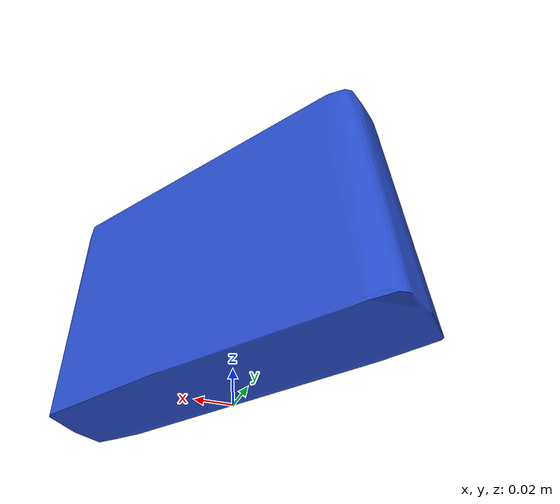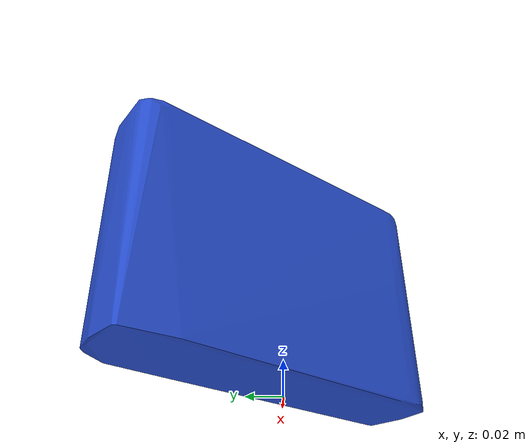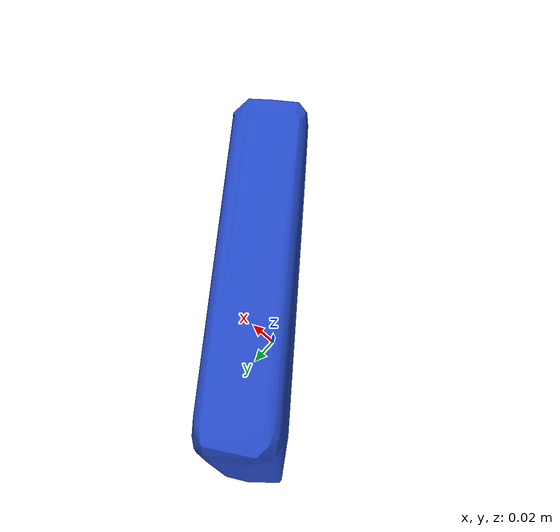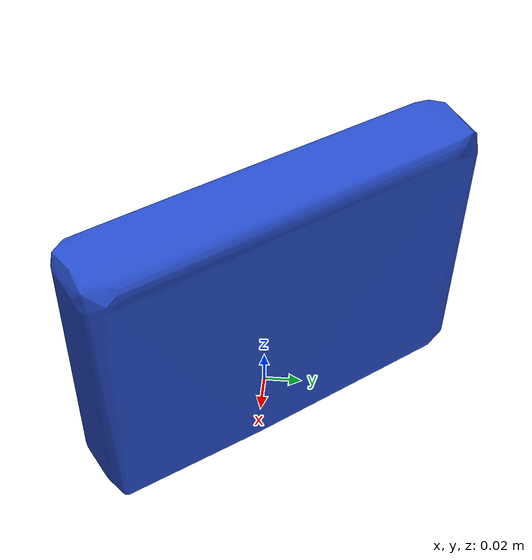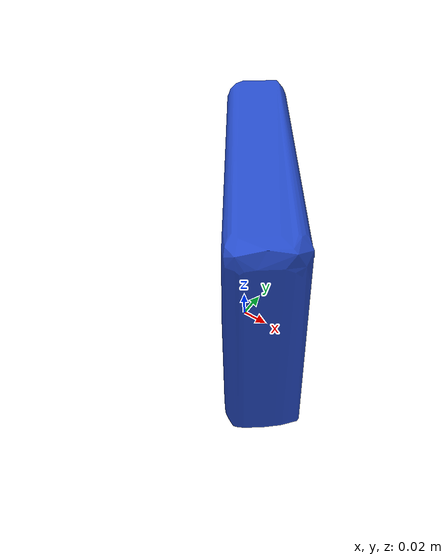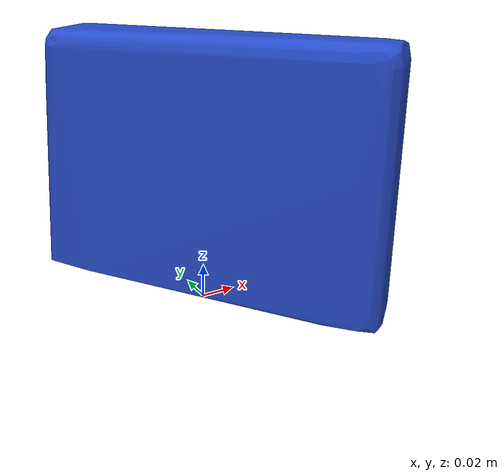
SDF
<?xml version='1.0'?>
<sdf version="1.4">
  <model name="eating_right_for_healthy_living_blueberry">
    <static>false</static>
    <link name="link">
      <inertial>
        <pose>0.00873575288273034 0.006825845742490345 0.07622649450508395 1.5785553652520665 -0.014439268267294277 -2.512883736590863</pose>
        <mass>0.142329668739367</mass>
        <inertia>
          <ixx>0.0007334062450214996</ixx>
          <ixy>-4.109874369196907e-23</ixy>
          <ixz>2.6912497636583907e-20</ixz>
          <iyy>0.0005096094201611</iyy>
          <iyz>-2.0068267716812234e-21</iyz>
          <izz>0.00027796555513878257</izz>
        </inertia>
      </inertial>
      <collision name="collision">
        <geometry>
          <mesh>
            <!-- Use a downsampled mesh for collisions -->
            <uri>model:///eating_right_for_healthy_living_blueberry/eating_right_for_healthy_living_blueberry_250_collision.obj</uri>
	        </mesh>
        </geometry>
        <surface>
      </surface>
      </collision>
      <visual name="visual">
        <geometry>
          <mesh>
            <uri>model:///eating_right_for_healthy_living_blueberry/optimized_tsdf_texture_mapped_mesh.obj</uri>
	        </mesh>
        </geometry>
        <material>
          <script>
            <uri>model:///eating_right_for_healthy_living_blueberry/eating_right_for_healthy_living_blueberry.material</uri>
            <name>eating_right_for_healthy_living_blueberry</name>
          </script>
        </material>
      </visual>
    </link>
  </model>
</sdf>
